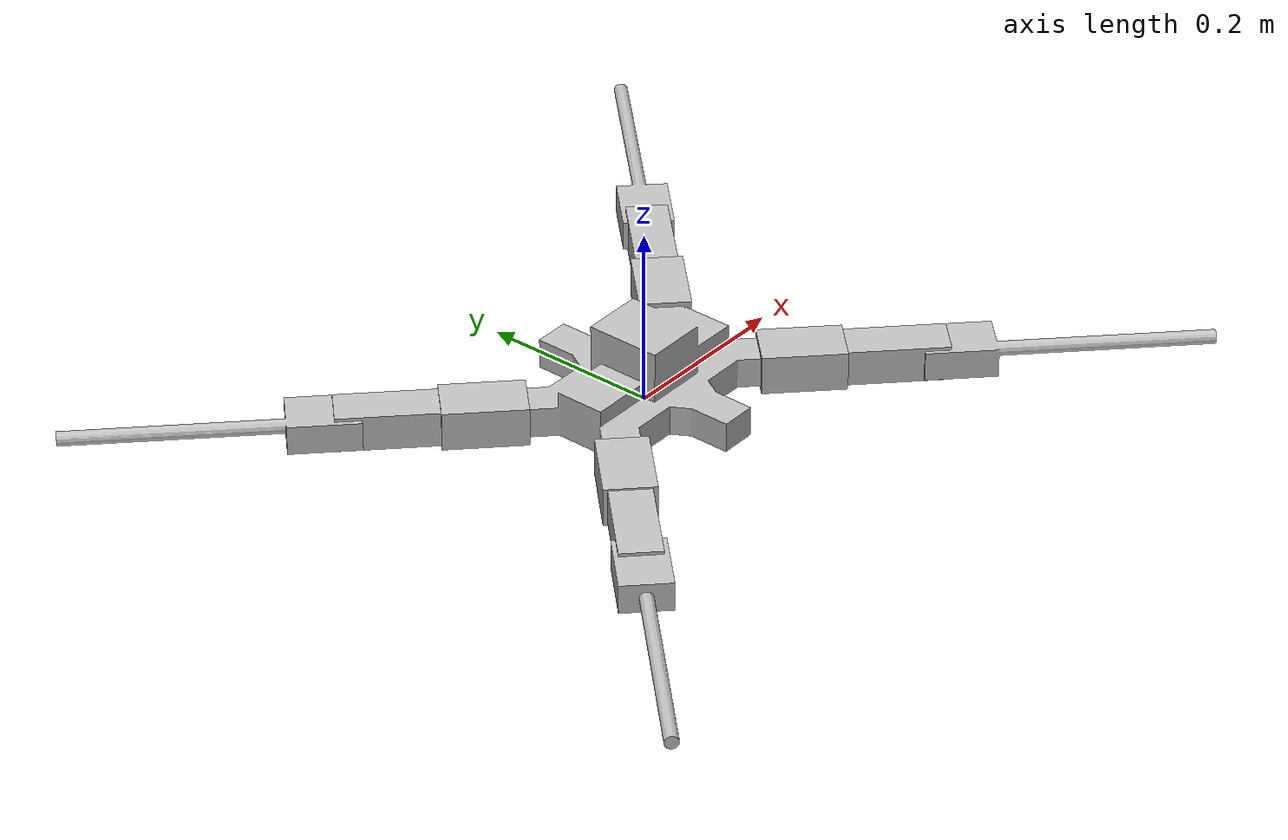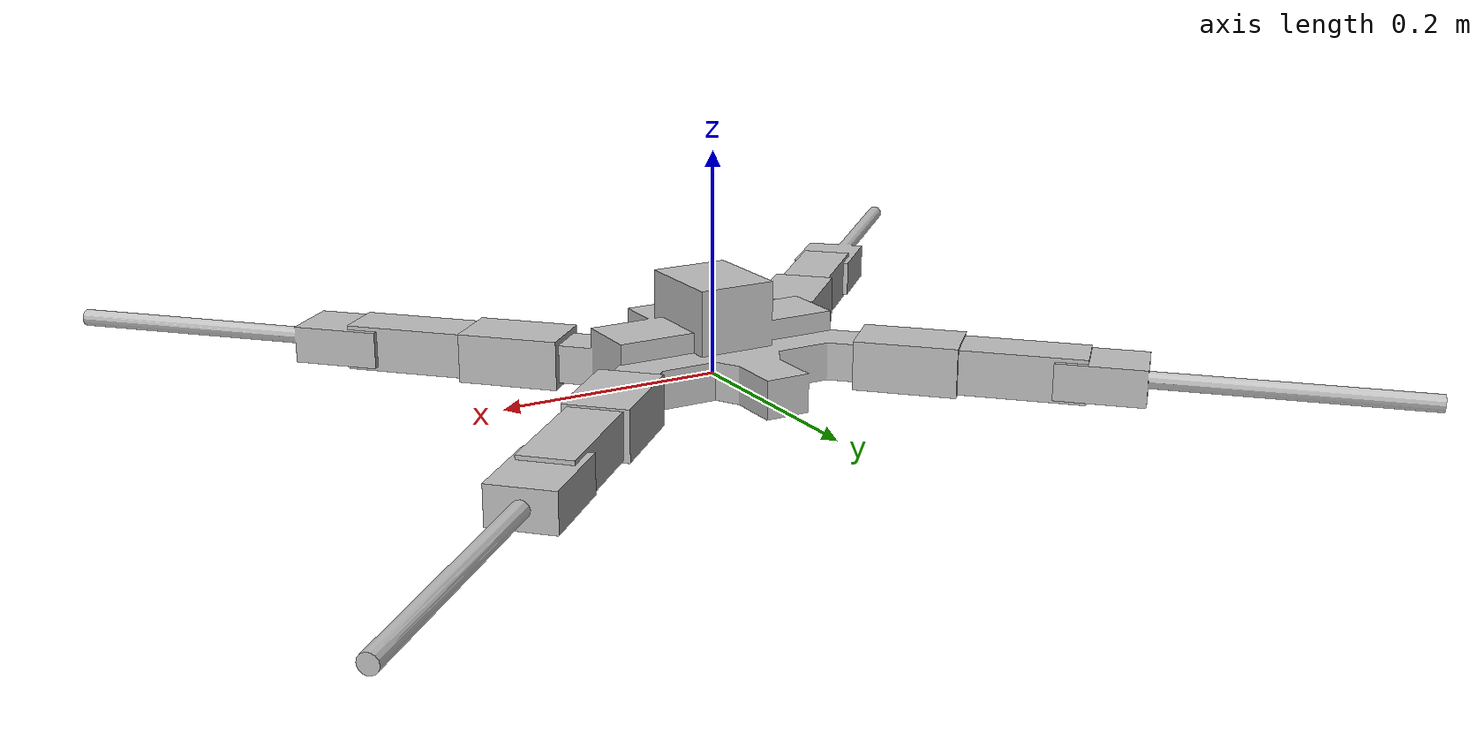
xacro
<?xml version="1.0"?>
<robot name="example_quadruped" xmlns:xacro="http://www.ros.org/wiki/xacro">
  <!-- If true, then only four legs are used -->
  <xacro:arg name="quadruped" default="true" />

  <xacro:include filename="$(find example_quadruped_description)/urdf/common.urdf.xacro" />
  <xacro:include filename="$(find example_quadruped_description)/urdf/body.urdf.xacro" />
  <xacro:include filename="$(find example_quadruped_description)/urdf/leg.urdf.xacro" />

  <link name="base_link" />
  <xacro:example_quadruped_body parent="base_link" />

  <xacro:example_quadruped_leg name="al" parent="body_link">
    <origin xyz="0.12062 0.070618 0.01525" rpy="0 0 ${pi / 4}" />
  </xacro:example_quadruped_leg>
  <xacro:example_quadruped_leg name="ar" parent="body_link">
    <origin xyz="0.12062 -0.070618 0.01525" rpy="0 0 ${-pi / 4}" />
  </xacro:example_quadruped_leg>

  <xacro:example_quadruped_leg name="bl" parent="body_link">
    <origin xyz="-0.12062 0.070618 0.01525" rpy="0 0 ${3 * pi / 4}" />
  </xacro:example_quadruped_leg>
  <xacro:example_quadruped_leg name="br" parent="body_link">
    <origin xyz="-0.12062 -0.070618 0.01525" rpy="0 0 ${-3 * pi / 4}" />
  </xacro:example_quadruped_leg>

  <gazebo>
    <plugin name="gazebo_ros_control" filename="libgazebo_ros_control.so">
      <robotNamespace>/example_quadruped</robotNamespace>
    </plugin>
  </gazebo>
</robot>

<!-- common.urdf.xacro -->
<robot xmlns:xacro="http://www.ros.org/wiki/xacro">
  <material name="example_quadruped_material">
    <color rgba="0.75 0.75 0.75 1" />
  </material>
</robot>

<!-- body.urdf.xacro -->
<robot xmlns:xacro="http://www.ros.org/wiki/xacro">
  <xacro:macro name="example_quadruped_body" params="parent">
    <link name="body_link">
      <visual>
        <geometry><mesh filename="package://example_quadruped_description/meshes/body_link.stl" /></geometry>
        <material name="example_quadruped_material" />
      </visual>
      <collision>
        <geometry><mesh filename="package://example_quadruped_description/meshes/body_link.stl" /></geometry>
      </collision>
    </link>

    <joint name="body_joint" type="fixed">
      <parent link="${parent}" />
      <child link="body_link" />
    </joint>
  </xacro:macro>
</robot>

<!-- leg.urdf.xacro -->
<robot xmlns:xacro="http://www.ros.org/wiki/xacro">
  <xacro:macro name="flexipod_joint_transmission" params="name">
    <transmission name="${name}_transmission">
      <type>transmission_interface/SimpleTransmission</type>
      <joint name="${name}_joint">
        <hardwareInterface>EffortJointInterface</hardwareInterface>
      </joint>
      <actuator name="${name}_motor">
        <mechanicalReduction>1</mechanicalReduction>
        <hardwareInterface>EffortJointInterface</hardwareInterface>
      </actuator>
    </transmission>
  </xacro:macro>

  <xacro:macro name="example_quadruped_leg" params="name parent *origin">
    <link name="${name}_coxa_link">
      <visual>
        <geometry><mesh filename="package://example_quadruped_description/meshes/coxa_link.stl" /></geometry>
        <origin rpy="${-pi / 2} 0 ${pi / 2}" />
        <material name="example_quadruped_material" />
      </visual>
      <collision>
        <geometry><mesh filename="package://example_quadruped_description/meshes/coxa_link.stl" /></geometry>
        <origin rpy="${-pi / 2} 0 ${pi / 2}" />
      </collision>
    </link>

    <link name="${name}_femur_link">
      <visual>
        <geometry><mesh filename="package://example_quadruped_description/meshes/femur_link.stl" /></geometry>
        <origin rpy="0 0 ${-pi / 2}" />
        <material name="example_quadruped_material" />
      </visual>
      <collision>
        <geometry><mesh filename="package://example_quadruped_description/meshes/femur_link.stl" /></geometry>
        <origin rpy="0 0 ${-pi / 2}" />
      </collision>
    </link>

    <link name="${name}_tibia_link">
      <visual>
        <geometry><mesh filename="package://example_quadruped_description/meshes/tibia_link.stl" /></geometry>
        <origin rpy="${-pi / 2} ${-pi / 2} 0" />
        <material name="example_quadruped_material" />
      </visual>
      <collision>
        <geometry><mesh filename="package://example_quadruped_description/meshes/tibia_link.stl" /></geometry>
        <origin rpy="${-pi / 2} ${-pi / 2} 0" />
      </collision>
    </link>

    <link name="${name}_foot_link" />

    <joint name="${name}_coxa_joint" type="revolute">
      <parent link="${parent}" />
      <child link="${name}_coxa_link" />

      <xacro:insert_block name="origin" />
      <axis xyz="0 0 1" />

      <limit lower="-0.785398" upper="0.785398" effort="3.1" velocity="7" />
    </joint>

    <joint name="${name}_femur_joint" type="revolute">
      <parent link="${name}_coxa_link" />
      <child link="${name}_femur_link" />

      <origin xyz="0.066 0 0" rpy="${-pi / 2} 0 0" />
      <axis xyz="0 0 1" />

      <limit lower="-1.9199" upper="1.9199" effort="10" velocity="5.5" />
    </joint>

    <joint name="${name}_tibia_joint" type="revolute">
      <parent link="${name}_femur_link" />
      <child link="${name}_tibia_link" />

      <origin xyz="0.109 0 0" rpy="0 0 0" />
      <axis xyz="0 0 1" />

      <limit lower="-1.9199" upper="1.9199" effort="10" velocity="5.5" />
    </joint>

    <joint name="${name}_foot_joint" type="fixed">
      <parent link="${name}_tibia_link" />
      <child link="${name}_foot_link" />

      <origin xyz="0.324 0 0" rpy="0 ${pi / 2} 0" />
    </joint>

    <xacro:flexipod_joint_transmission name="${name}_coxa" />
    <xacro:flexipod_joint_transmission name="${name}_femur" />
    <xacro:flexipod_joint_transmission name="${name}_tibia" />
  </xacro:macro>
</robot>
